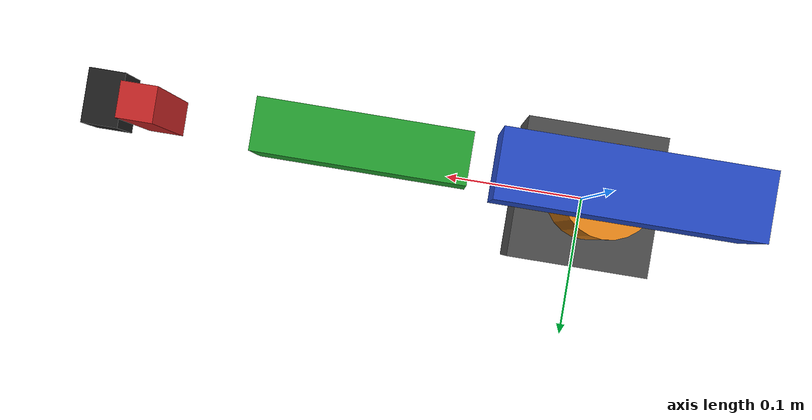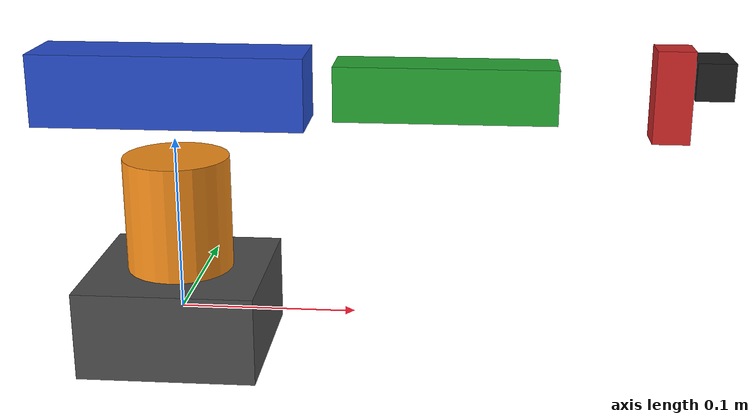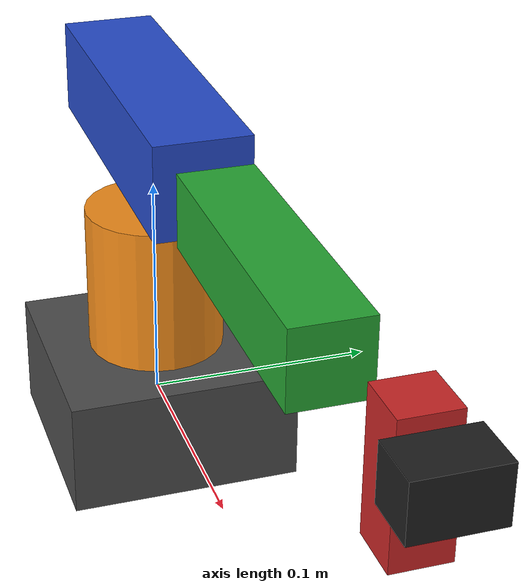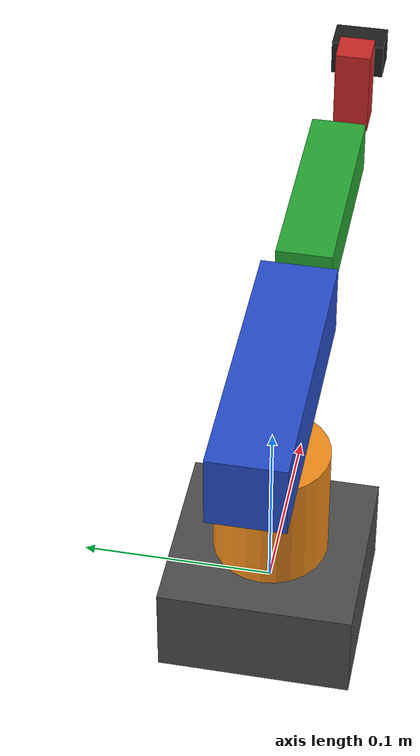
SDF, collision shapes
<?xml version="1.0" ?>
<sdf version="1.7">
  <model name="roomie_4dof">
    <pose>0 0 0 0 0 0</pose>

    <!-- Base Link -->
    <link name="base_link">
      <inertial>
        <mass>1.0</mass>
        <inertia>
          <ixx>0.1</ixx>
          <iyy>0.1</iyy>
          <izz>0.1</izz>
        </inertia>
      </inertial>
      <visual name="base_visual">
        <geometry>
          <mesh>
            <uri>package://arm_description/meshes/base_link.stl</uri>
          </mesh>
        </geometry>
        <material>
          <script>
            <uri>file://media/materials/scripts/gazebo.material</uri>
            <name>Gazebo/DarkGrey</name>
          </script>
        </material>
      </visual>
      <collision name="base_collision">
        <geometry>
          <box>
            <size>0.1 0.1 0.05</size>
          </box>
        </geometry>
      </collision>
    </link>

    <!-- Link 1 -->
    <link name="link_1">
      <pose relative_to="joint_1">0 0 0 0 0 0</pose>
      <inertial>
        <mass>0.5</mass>
        <inertia>
          <ixx>0.05</ixx>
          <iyy>0.05</iyy>
          <izz>0.05</izz>
        </inertia>
      </inertial>
      <visual name="link1_visual">
        <geometry>
          <mesh>
            <uri>package://arm_description/meshes/link_1.stl</uri>
          </mesh>
        </geometry>
        <material>
          <script>
            <uri>file://media/materials/scripts/gazebo.material</uri>
            <name>Gazebo/Orange</name>
          </script>
        </material>
      </visual>
      <collision name="link1_collision">
        <geometry>
          <cylinder>
            <radius>0.03</radius>
            <length>0.08</length>
          </cylinder>
        </geometry>
      </collision>
    </link>

    <!-- Link 2 -->
    <link name="link_2">
      <pose relative_to="joint_2">0 0 0 0 0 0</pose>
      <inertial>
        <mass>0.3</mass>
        <inertia>
          <ixx>0.03</ixx>
          <iyy>0.03</iyy>
          <izz>0.03</izz>
        </inertia>
      </inertial>
      <visual name="link2_visual">
        <geometry>
          <mesh>
            <uri>package://arm_description/meshes/link_2.stl</uri>
          </mesh>
        </geometry>
        <material>
          <script>
            <uri>file://media/materials/scripts/gazebo.material</uri>
            <name>Gazebo/Blue</name>
          </script>
        </material>
      </visual>
      <collision name="link2_collision">
        <geometry>
          <box>
            <size>0.15 0.04 0.04</size>
          </box>
        </geometry>
      </collision>
    </link>

    <!-- Link 3 -->
    <link name="link_3">
      <pose relative_to="joint_3">0 0 0 0 0 0</pose>
      <inertial>
        <mass>0.2</mass>
        <inertia>
          <ixx>0.02</ixx>
          <iyy>0.02</iyy>
          <izz>0.02</izz>
        </inertia>
      </inertial>
      <visual name="link3_visual">
        <geometry>
          <mesh>
            <uri>package://arm_description/meshes/link_3.stl</uri>
          </mesh>
        </geometry>
        <material>
          <script>
            <uri>file://media/materials/scripts/gazebo.material</uri>
            <name>Gazebo/Green</name>
          </script>
        </material>
      </visual>
      <collision name="link3_collision">
        <geometry>
          <box>
            <size>0.12 0.03 0.03</size>
          </box>
        </geometry>
      </collision>
    </link>

    <!-- Link 4 (End Effector) -->
    <link name="link_4">
      <pose relative_to="joint_4">0 0 0 0 0 0</pose>
      <inertial>
        <mass>0.1</mass>
        <inertia>
          <ixx>0.01</ixx>
          <iyy>0.01</iyy>
          <izz>0.01</izz>
        </inertia>
      </inertial>
      <visual name="link4_visual">
        <geometry>
          <mesh>
            <uri>package://arm_description/meshes/link_4.stl</uri>
          </mesh>
        </geometry>
        <material>
          <script>
            <uri>file://media/materials/scripts/gazebo.material</uri>
            <name>Gazebo/Red</name>
          </script>
        </material>
      </visual>
      <collision name="link4_collision">
        <geometry>
          <box>
            <size>0.02 0.02 0.05</size>
          </box>
        </geometry>
      </collision>
    </link>

    <!-- Camera Link -->
    <link name="camera_link">
      <pose relative_to="link_4">0.02 0 0.01 0 0 0</pose>
      <inertial>
        <mass>0.05</mass>
        <inertia>
          <ixx>0.005</ixx>
          <iyy>0.005</iyy>
          <izz>0.005</izz>
        </inertia>
      </inertial>
      <visual name="camera_visual">
        <geometry>
          <mesh>
            <uri>package://arm_description/meshes/camera.stl</uri>
          </mesh>
        </geometry>
        <material>
          <script>
            <uri>file://media/materials/scripts/gazebo.material</uri>
            <name>Gazebo/Black</name>
          </script>
        </material>
      </visual>
      <collision name="camera_collision">
        <geometry>
          <box>
            <size>0.02 0.03 0.02</size>
          </box>
        </geometry>
      </collision>

      <!-- Camera Sensor -->
      <sensor name="camera" type="camera">
        <pose>0.01 0 0 0 0 0</pose>
        <camera>
          <horizontal_fov>1.047</horizontal_fov>
          <image>
            <width>640</width>
            <height>480</height>
          </image>
          <clip>
            <near>0.1</near>
            <far>5.0</far>
          </clip>
        </camera>
        <always_on>1</always_on>
        <update_rate>30</update_rate>
        <visualize>true</visualize>
        <topic>camera</topic>
      </sensor>
    </link>

    <!-- Joint 1: Base to Link 1 -->
    <joint name="joint_1" type="revolute">
      <pose relative_to="base_link">0 0 0.05 0 0 0</pose>
      <parent>base_link</parent>
      <child>link_1</child>
      <axis>
        <xyz>0 0 1</xyz>
        <limit>
          <lower>-3.14</lower>
          <upper>3.14</upper>
          <effort>10</effort>
          <velocity>2.0</velocity>
        </limit>
        <dynamics>
          <damping>0.1</damping>
          <friction>0.1</friction>
        </dynamics>
      </axis>
    </joint>

    <!-- Joint 2: Link 1 to Link 2 -->
    <joint name="joint_2" type="revolute">
      <pose relative_to="link_1">0 0 0.08 0 0 0</pose>
      <parent>link_1</parent>
      <child>link_2</child>
      <axis>
        <xyz>0 1 0</xyz>
        <limit>
          <lower>-1.57</lower>
          <upper>1.57</upper>
          <effort>10</effort>
          <velocity>2.0</velocity>
        </limit>
        <dynamics>
          <damping>0.1</damping>
          <friction>0.1</friction>
        </dynamics>
      </axis>
    </joint>

    <!-- Joint 3: Link 2 to Link 3 -->
    <joint name="joint_3" type="revolute">
      <pose relative_to="link_2">0.15 0 0 0 0 0</pose>
      <parent>link_2</parent>
      <child>link_3</child>
      <axis>
        <xyz>0 1 0</xyz>
        <limit>
          <lower>-2.09</lower>
          <upper>2.09</upper>
          <effort>10</effort>
          <velocity>2.0</velocity>
        </limit>
        <dynamics>
          <damping>0.1</damping>
          <friction>0.1</friction>
        </dynamics>
      </axis>
    </joint>

    <!-- Joint 4: Link 3 to Link 4 -->
    <joint name="joint_4" type="revolute">
      <pose relative_to="link_3">0.12 0 0 0 0 0</pose>
      <parent>link_3</parent>
      <child>link_4</child>
      <axis>
        <xyz>0 1 0</xyz>
        <limit>
          <lower>-1.57</lower>
          <upper>1.57</upper>
          <effort>5</effort>
          <velocity>2.0</velocity>
        </limit>
        <dynamics>
          <damping>0.1</damping>
          <friction>0.1</friction>
        </dynamics>
      </axis>
    </joint>

    <!-- Camera Joint: Link 4 to Camera -->
    <joint name="camera_joint" type="fixed">
      <parent>link_4</parent>
      <child>camera_link</child>
    </joint>

    <!-- Gazebo Plugins -->
    <plugin
      filename="gz-sim-joint-state-publisher-system"
      name="gz::sim::systems::JointStatePublisher">
    </plugin>

    <plugin
      filename="gz-sim-joint-position-controller-system"
      name="gz::sim::systems::JointPositionController">
      <joint_name>joint_1</joint_name>
    </plugin>

    <plugin
      filename="gz-sim-joint-position-controller-system"
      name="gz::sim::systems::JointPositionController">
      <joint_name>joint_2</joint_name>
    </plugin>

    <plugin
      filename="gz-sim-joint-position-controller-system"
      name="gz::sim::systems::JointPositionController">
      <joint_name>joint_3</joint_name>
    </plugin>

    <plugin
      filename="gz-sim-joint-position-controller-system"
      name="gz::sim::systems::JointPositionController">
      <joint_name>joint_4</joint_name>
    </plugin>

  </model>
</sdf>
